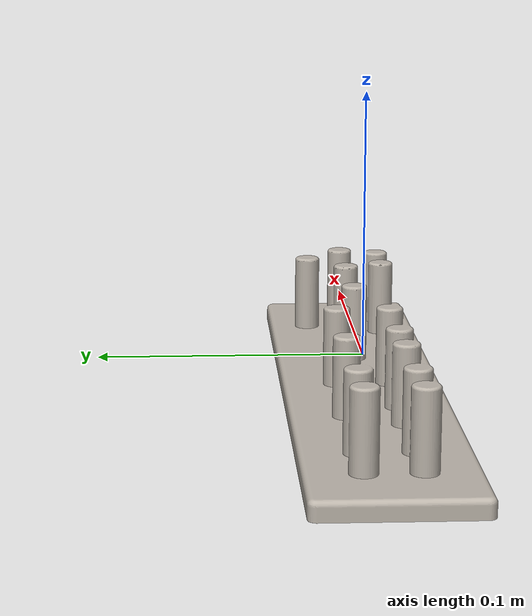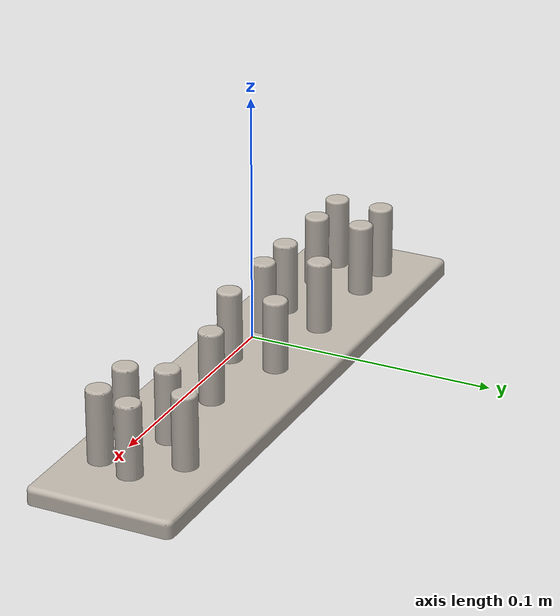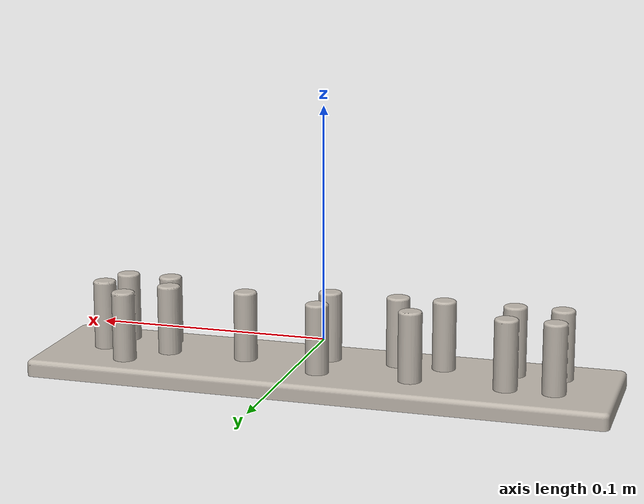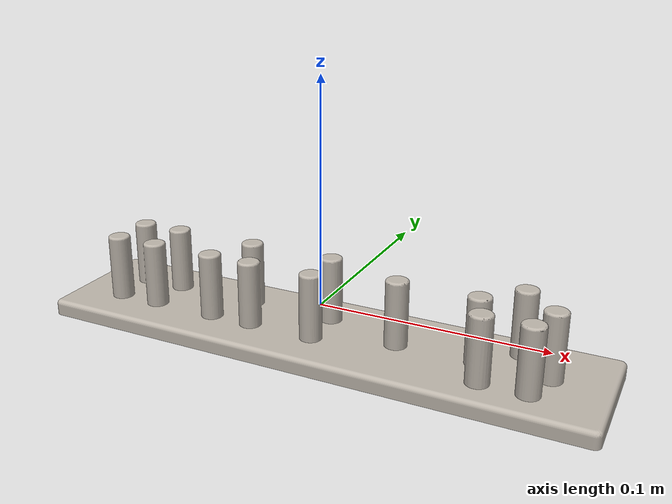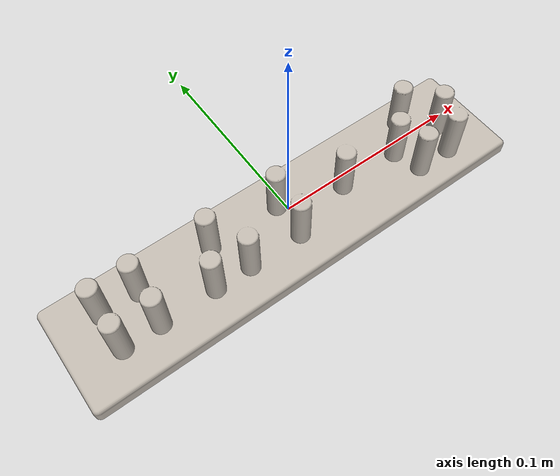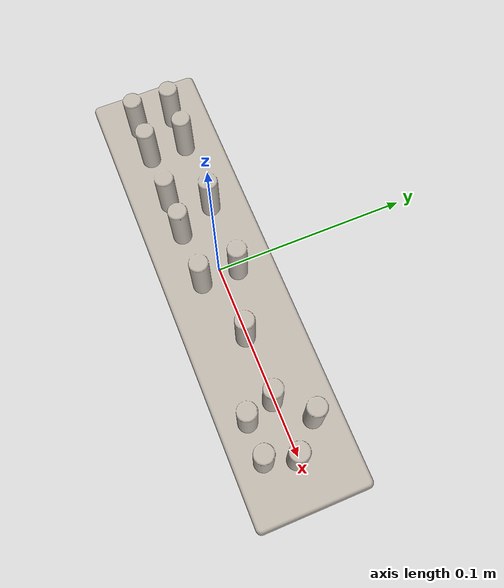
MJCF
<mujoco model="toy_five_insertion_base">
  <default>
    <default class="toy_base_visual">
      <geom group="2" type="mesh" contype="0" conaffinity="0"/>
    </default>
    <default class="toy_base_collision">
      <geom group="3" type="mesh"/>
    </default>
  </default>
  <asset>
    <texture type="2d" name="96f5cf15-ead2-4051-a6c4-9892a9259b50" file="96f5cf15-ead2-4051-a6c4-9892a9259b50.png"/>
    <material name="toy_base_material" texture="96f5cf15-ead2-4051-a6c4-9892a9259b50" specular="0.5" shininess="0.5"/>
    <mesh file="toy_five_insertion_base.obj"/>
    <mesh file="toy_five_insertion_base_collision_0.obj"/>
    <mesh file="toy_five_insertion_base_collision_1.obj"/>
    <mesh file="toy_five_insertion_base_collision_2.obj"/>
    <mesh file="toy_five_insertion_base_collision_3.obj"/>
    <mesh file="toy_five_insertion_base_collision_4.obj"/>
    <mesh file="toy_five_insertion_base_collision_5.obj"/>
    <mesh file="toy_five_insertion_base_collision_6.obj"/>
    <mesh file="toy_five_insertion_base_collision_7.obj"/>
    <mesh file="toy_five_insertion_base_collision_8.obj"/>
    <mesh file="toy_five_insertion_base_collision_9.obj"/>
    <mesh file="toy_five_insertion_base_collision_10.obj"/>
    <mesh file="toy_five_insertion_base_collision_11.obj"/>
    <mesh file="toy_five_insertion_base_collision_12.obj"/>
    <mesh file="toy_five_insertion_base_collision_13.obj"/>
    <mesh file="toy_five_insertion_base_collision_14.obj"/>
    <mesh file="toy_five_insertion_base_collision_15.obj"/>
    <mesh file="toy_five_insertion_base_collision_16.obj"/>
    <mesh file="toy_five_insertion_base_collision_17.obj"/>
    <mesh file="toy_five_insertion_base_collision_18.obj"/>
    <mesh file="toy_five_insertion_base_collision_19.obj"/>
    <mesh file="toy_five_insertion_base_collision_20.obj"/>
    <mesh file="toy_five_insertion_base_collision_21.obj"/>
    <mesh file="toy_five_insertion_base_collision_22.obj"/>
    <mesh file="toy_five_insertion_base_collision_23.obj"/>
    <mesh file="toy_five_insertion_base_collision_24.obj"/>
    <mesh file="toy_five_insertion_base_collision_25.obj"/>
    <mesh file="toy_five_insertion_base_collision_26.obj"/>
    <mesh file="toy_five_insertion_base_collision_27.obj"/>
    <mesh file="toy_five_insertion_base_collision_28.obj"/>
    <mesh file="toy_five_insertion_base_collision_29.obj"/>
    <mesh file="toy_five_insertion_base_collision_30.obj"/>
    <mesh file="toy_five_insertion_base_collision_31.obj"/>
    <mesh file="toy_five_insertion_base_collision_32.obj"/>
    <mesh file="toy_five_insertion_base_collision_33.obj"/>
    <mesh file="toy_five_insertion_base_collision_34.obj"/>
    <mesh file="toy_five_insertion_base_collision_35.obj"/>
    <mesh file="toy_five_insertion_base_collision_36.obj"/>
    <mesh file="toy_five_insertion_base_collision_37.obj"/>
    <mesh file="toy_five_insertion_base_collision_38.obj"/>
    <mesh file="toy_five_insertion_base_collision_39.obj"/>
    <mesh file="toy_five_insertion_base_collision_40.obj"/>
    <mesh file="toy_five_insertion_base_collision_41.obj"/>
  </asset>
  <worldbody>
    <body name="toy_five_insertion_base" mocap="true">
      <geom material="toy_base_material" mesh="toy_five_insertion_base" class="toy_base_visual"/>
      <geom mesh="toy_five_insertion_base_collision_0" rgba="0.38187981786901093 0.5309595657886952 0.9277789293738732 1" class="toy_base_collision"/>
      <geom mesh="toy_five_insertion_base_collision_1" rgba="0.3738893467771893 0.6065012732802638 0.44381257611320624 1" class="toy_base_collision"/>
      <geom mesh="toy_five_insertion_base_collision_2" rgba="0.7528755882269087 0.9041559525001384 0.8286674580060863 1" class="toy_base_collision"/>
      <geom mesh="toy_five_insertion_base_collision_3" rgba="0.44796091853315434 0.9043198391091491 0.2736826515026527 1" class="toy_base_collision"/>
      <geom mesh="toy_five_insertion_base_collision_4" rgba="0.6742135387802795 0.052800288033159504 0.2499408241494805 1" class="toy_base_collision"/>
      <geom mesh="toy_five_insertion_base_collision_5" rgba="0.66011083753805 0.8457466891987918 0.531101801851221 1" class="toy_base_collision"/>
      <geom mesh="toy_five_insertion_base_collision_6" rgba="0.4987331493691517 0.6496945835204486 0.8022311368765712 1" class="toy_base_collision"/>
      <geom mesh="toy_five_insertion_base_collision_7" rgba="0.9325551287438074 0.554939704789773 0.7534058619922099 1" class="toy_base_collision"/>
      <geom mesh="toy_five_insertion_base_collision_8" rgba="0.7346104750751417 0.4682976961392963 0.2203749939609685 1" class="toy_base_collision"/>
      <geom mesh="toy_five_insertion_base_collision_9" rgba="0.9654034249066716 0.11809195616620449 0.46628791478651155 1" class="toy_base_collision"/>
      <geom mesh="toy_five_insertion_base_collision_10" rgba="0.3467312239100864 0.9006403180616213 0.7690829074453058 1" class="toy_base_collision"/>
      <geom mesh="toy_five_insertion_base_collision_11" rgba="0.7982010337203074 0.8455963701979048 0.7214661746964235 1" class="toy_base_collision"/>
      <geom mesh="toy_five_insertion_base_collision_12" rgba="0.42477552006422314 0.8304565387031484 0.4037156129436871 1" class="toy_base_collision"/>
      <geom mesh="toy_five_insertion_base_collision_13" rgba="0.5948771051048841 0.9083558909658188 0.584173279050875 1" class="toy_base_collision"/>
      <geom mesh="toy_five_insertion_base_collision_14" rgba="0.6739141951715879 0.5552819217355739 0.6944319830575374 1" class="toy_base_collision"/>
      <geom mesh="toy_five_insertion_base_collision_15" rgba="0.5196016161796737 0.3133447113568787 0.8583751934976749 1" class="toy_base_collision"/>
      <geom mesh="toy_five_insertion_base_collision_16" rgba="0.14463838039455224 0.34361344583720665 0.7165646301925314 1" class="toy_base_collision"/>
      <geom mesh="toy_five_insertion_base_collision_17" rgba="0.3979418772937816 0.014436982939431298 0.23118363215943005 1" class="toy_base_collision"/>
      <geom mesh="toy_five_insertion_base_collision_18" rgba="0.3090366681646509 0.05461363904457883 0.5744174995225028 1" class="toy_base_collision"/>
      <geom mesh="toy_five_insertion_base_collision_19" rgba="0.2719269729997821 0.26019349508903433 0.44399343114385836 1" class="toy_base_collision"/>
      <geom mesh="toy_five_insertion_base_collision_20" rgba="0.5191127083085808 0.7848115297279159 0.6183095101009795 1" class="toy_base_collision"/>
      <geom mesh="toy_five_insertion_base_collision_21" rgba="0.29866650801379946 0.5944837188726012 0.0024750654924483584 1" class="toy_base_collision"/>
      <geom mesh="toy_five_insertion_base_collision_22" rgba="0.18674339798791095 0.2536222217544156 0.26407247389086164 1" class="toy_base_collision"/>
      <geom mesh="toy_five_insertion_base_collision_23" rgba="0.7377104804505242 0.8961001405330803 0.46347503800259726 1" class="toy_base_collision"/>
      <geom mesh="toy_five_insertion_base_collision_24" rgba="0.5046989321763538 0.5897858706481492 0.8179627824956712 1" class="toy_base_collision"/>
      <geom mesh="toy_five_insertion_base_collision_25" rgba="0.840884587550142 0.07168794004687307 0.32083682831654226 1" class="toy_base_collision"/>
      <geom mesh="toy_five_insertion_base_collision_26" rgba="0.4654091041720855 0.06118389238762423 0.323812216566969 1" class="toy_base_collision"/>
      <geom mesh="toy_five_insertion_base_collision_27" rgba="0.07096650661989823 0.738967159975541 0.06208232822726312 1" class="toy_base_collision"/>
      <geom mesh="toy_five_insertion_base_collision_28" rgba="0.1740870427144613 0.7115105075097479 0.7003913036122311 1" class="toy_base_collision"/>
      <geom mesh="toy_five_insertion_base_collision_29" rgba="0.42439137497780666 0.4365019677444949 0.27741165296262515 1" class="toy_base_collision"/>
      <geom mesh="toy_five_insertion_base_collision_30" rgba="0.6588544036190738 0.8314683339121887 0.8529275763999612 1" class="toy_base_collision"/>
      <geom mesh="toy_five_insertion_base_collision_31" rgba="0.2980134918721348 0.5789632433097057 0.8040425028878694 1" class="toy_base_collision"/>
      <geom mesh="toy_five_insertion_base_collision_32" rgba="0.8654663518818911 0.987977147294368 0.05152626686945461 1" class="toy_base_collision"/>
      <geom mesh="toy_five_insertion_base_collision_33" rgba="0.08634576650091952 0.48391652987731604 0.04995747108700821 1" class="toy_base_collision"/>
      <geom mesh="toy_five_insertion_base_collision_34" rgba="0.1609248433120738 0.3660440859481501 0.050120230982372616 1" class="toy_base_collision"/>
      <geom mesh="toy_five_insertion_base_collision_35" rgba="0.7583320176377535 0.8707512483469887 0.33949647174371933 1" class="toy_base_collision"/>
      <geom mesh="toy_five_insertion_base_collision_36" rgba="0.04388179777824208 0.36227491255316535 0.4837089787087079 1" class="toy_base_collision"/>
      <geom mesh="toy_five_insertion_base_collision_37" rgba="0.17184412607840016 0.6151200202748021 0.49826335487379414 1" class="toy_base_collision"/>
      <geom mesh="toy_five_insertion_base_collision_38" rgba="0.08755262634407945 0.22538852772648876 0.48286888949276474 1" class="toy_base_collision"/>
      <geom mesh="toy_five_insertion_base_collision_39" rgba="0.17093564657541427 0.4870204987927519 0.4110325371820741 1" class="toy_base_collision"/>
      <geom mesh="toy_five_insertion_base_collision_40" rgba="0.7414163532637561 0.4595293718284872 0.8553082154442722 1" class="toy_base_collision"/>
      <geom mesh="toy_five_insertion_base_collision_41" rgba="0.19035763233558578 0.26805392093710967 0.4617250757490706 1" class="toy_base_collision"/>
    </body>
  </worldbody>
</mujoco>
